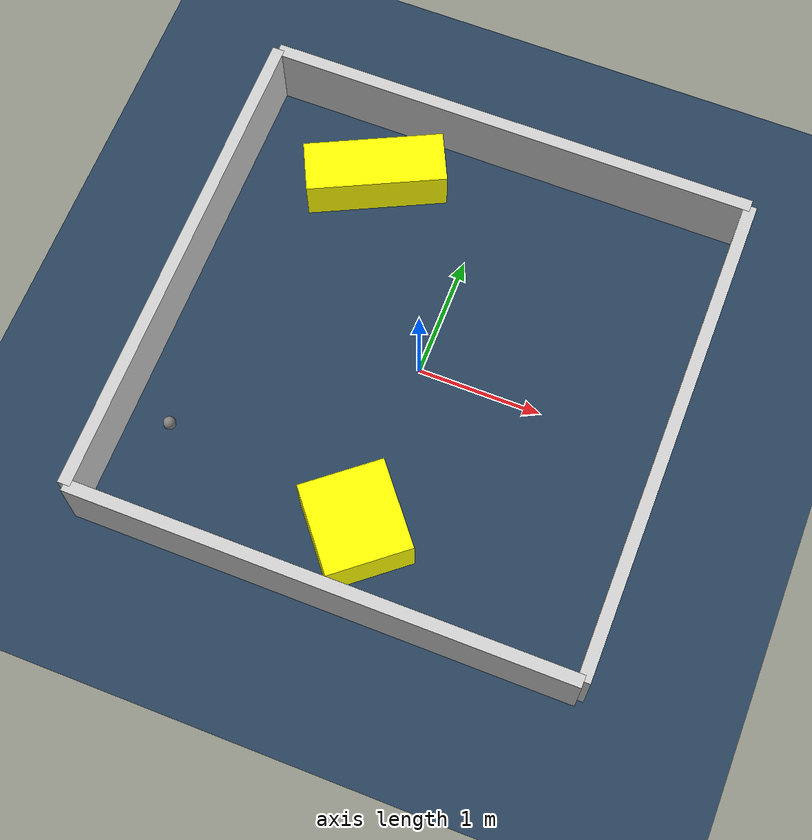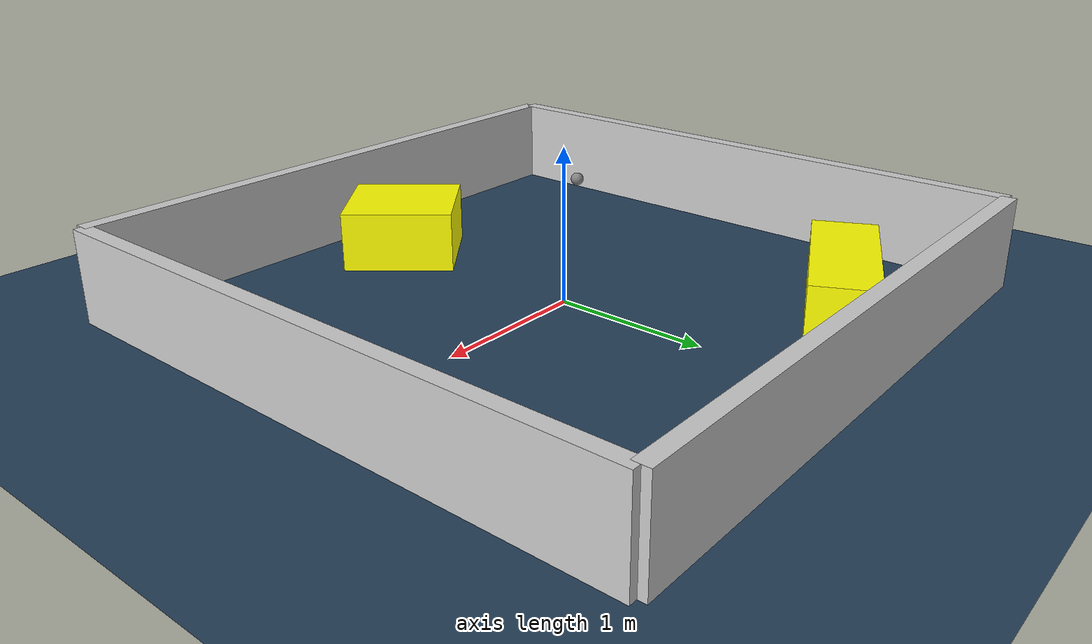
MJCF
<?xml version="1.0" ?>
<mujoco model="generated_environment">
  <option timestep="0.01" integrator="RK4" cone="elliptic"/>
  <default>
    <geom density="1"/>
  </default>
  <asset>
    <texture builtin="gradient" height="3072" rgb1="0.3 0.5 0.7" rgb2="0 0 0" type="skybox" width="512"/>
    <texture builtin="checker" height="300" mark="edge" markrgb="0.8 0.8 0.8" name="groundplane" rgb1="0.2 0.3 0.4" rgb2="0.1 0.2 0.3" type="2d" width="300"/>
    <material name="groundplane" reflectance="0.2" texrepeat="5 5" texture="groundplane" texuniform="true"/>
    <material name="robot" rgba="0.0 1.0 0.0 1"/>
  </asset>
  <worldbody>
    <light dir="0 0 -1" directional="true" pos="0 0 1.5"/>
    <geom condim="4" friction="1.0 0.005 0.001" material="groundplane" name="floor" size="0 0 0.05" type="plane"/>
    <body name="walls">
      <geom name="wall_1" condim="4" pos="-2.0 0.0 0.3" rgba="0.800000011920929 0.800000011920929 0.800000011920929 1.0" size="0.05 2.0 0.3" type="box"/>
      <geom name="wall_2" condim="4" pos="2.0 0.0 0.3" rgba="0.800000011920929 0.800000011920929 0.800000011920929 1.0" size="0.05 2.0 0.3" type="box"/>
      <geom name="wall_3" condim="4" pos="0.0 -2.0 0.3" rgba="0.800000011920929 0.800000011920929 0.800000011920929 1.0" size="2.0 0.05 0.3" type="box"/>
      <geom name="wall_4" condim="4" pos="0.0 2.0 0.3" rgba="0.800000011920929 0.800000011920929 0.800000011920929 1.0" size="2.0 0.05 0.3" type="box"/>
    </body>
    <body name="robot">
      <joint name="joint_x" type="slide" pos="0 0 0" axis="1 0 0"/>
      <joint name="joint_y" type="slide" pos="0 0 0" axis="0 1 0"/>
      <geom name="robot" type="sphere" pos="-1.5903560836079376 -1.1651503897240878 0.2" size="0.05" mass="5." friction="1.0 0.005 0.0001" condim="4"/>
      <site name="sensor_ball"/>
    </body>
    <body name="obstacle_1_movable">
      <geom name="obstacle_1_movable" condim="4" pos="-0.9301226164503504 1.4187042109715335 0.2" euler="0 0 295.8823598066878" friction="1.0 0.005 0.001" rgba="1 1 0 1" size="0.20930227556360126 0.5643778011323151 0.2" type="box" mass="0.1"/>
      <joint type="free"/>
    </body>
    <body name="obstacle_2_movable">
      <geom name="obstacle_2_movable" condim="4" pos="0.03842248813236915 -1.4028070357716287 0.2" euler="0 0 39.27900946059004" friction="1.0 0.005 0.001" rgba="1 1 0 1" size="0.34023432467959464 0.3655828165208811 0.2" type="box" mass="0.1"/>
      <joint type="free"/>
    </body>
  </worldbody>
  <actuator>
    <motor name="actuator_x" joint="joint_x" gear="1" ctrlrange="-1 1"/>
    <motor name="actuator_y" joint="joint_y" gear="1" ctrlrange="-1 1"/>
  </actuator>
</mujoco>
